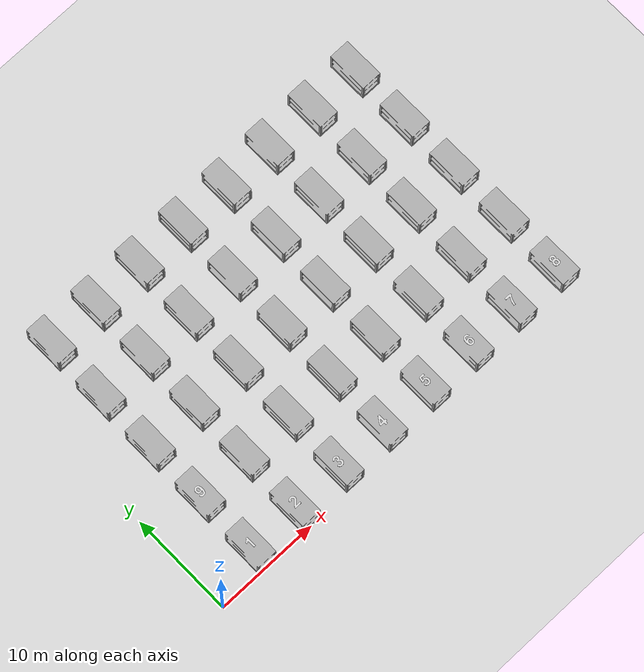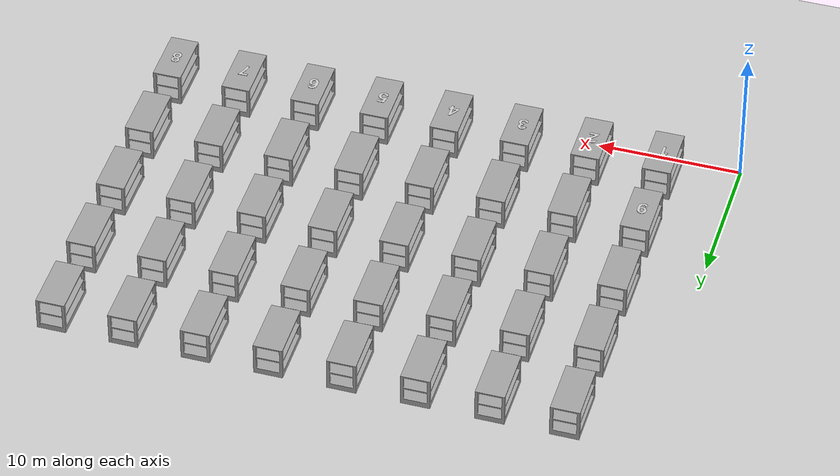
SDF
<?xml version="1.0"?>
<sdf version="1.4">
  <world name="Warehouse">
    <include>
      <uri>model://ground_plane</uri>
    </include>
    <include>
      <uri>model://sun</uri>
    </include>
    <physics type='ode'>
      <max_step_size>0.001</max_step_size>
      <real_time_update_rate>2000</real_time_update_rate>
      <gravity>0 0 -9.8</gravity>
    </physics>

    <model name="rack1">
      <pose>5 4 0  0 0 0</pose>
      <static>true</static>
      <link name="body">
        <visual name="visual">
          <geometry>
            <mesh><uri>file://warehouserack.dae</uri></mesh>
          </geometry>
        </visual>
        <collision name="collision">
          <geometry>
            <mesh><uri>file://warehouserack.dae</uri></mesh>
          </geometry>
        </collision>
      </link>
    </model>

    <model name="rack1_tag">
      <pose>5 2 2.4  0 0 0</pose>
      <static>true</static>
      <link name="body">
        <visual name="visual">
          <geometry>
            <mesh><uri>file://one.dae</uri></mesh>
          </geometry>
        </visual>
        <collision name="collision">
          <geometry>
            <mesh><uri>file://one.dae</uri></mesh>
          </geometry>
        </collision>
      </link>
    </model>

    <model name="rack2">
      <pose>10 4 0  0 0 0</pose>
      <static>true</static>
      <link name="body">
        <visual name="visual">
          <geometry>
            <mesh><uri>file://warehouserack.dae</uri></mesh>
          </geometry>
        </visual>
        <collision name="collision">
          <geometry>
            <mesh><uri>file://warehouserack.dae</uri></mesh>
          </geometry>
        </collision>
      </link>
    </model>

    <model name="rack2_tag">
      <pose>10 2 2.4  0 0 0</pose>
      <static>true</static>
      <link name="body">
        <visual name="visual">
          <geometry>
            <mesh><uri>file://two.dae</uri></mesh>
          </geometry>
        </visual>
        <collision name="collision">
          <geometry>
            <mesh><uri>file://two.dae</uri></mesh>
          </geometry>
        </collision>
      </link>
    </model>

    <model name="rack3">
      <pose>15 4 0  0 0 0</pose>
      <static>true</static>
      <link name="body">
        <visual name="visual">
          <geometry>
            <mesh><uri>file://warehouserack.dae</uri></mesh>
          </geometry>
        </visual>
        <collision name="collision">
          <geometry>
            <mesh><uri>file://warehouserack.dae</uri></mesh>
          </geometry>
        </collision>
      </link>
    </model>

    <model name="rack3_tag">
      <pose>15 2 2.4  0 0 0</pose>
      <static>true</static>
      <link name="body">
        <visual name="visual">
          <geometry>
            <mesh><uri>file://three.dae</uri></mesh>
          </geometry>
        </visual>
        <collision name="collision">
          <geometry>
            <mesh><uri>file://three.dae</uri></mesh>
          </geometry>
        </collision>
      </link>
    </model>

    <model name="rack4">
      <pose>20 4 0  0 0 0</pose>
      <static>true</static>
      <link name="body">
        <visual name="visual">
          <geometry>
            <mesh><uri>file://warehouserack.dae</uri></mesh>
          </geometry>
        </visual>
        <collision name="collision">
          <geometry>
            <mesh><uri>file://warehouserack.dae</uri></mesh>
          </geometry>
        </collision>
      </link>
    </model>

    <model name="rack4_tag">
      <pose>20 2 2.4  0 0 0</pose>
      <static>true</static>
      <link name="body">
        <visual name="visual">
          <geometry>
            <mesh><uri>file://four.dae</uri></mesh>
          </geometry>
        </visual>
        <collision name="collision">
          <geometry>
            <mesh><uri>file://four.dae</uri></mesh>
          </geometry>
        </collision>
      </link>
    </model>

    <model name="rack5">
      <pose>25 4 0  0 0 0</pose>
      <static>true</static>
      <link name="body">
        <visual name="visual">
          <geometry>
            <mesh><uri>file://warehouserack.dae</uri></mesh>
          </geometry>
        </visual>
        <collision name="collision">
          <geometry>
            <mesh><uri>file://warehouserack.dae</uri></mesh>
          </geometry>
        </collision>
      </link>
    </model>

    <model name="rack5_tag">
      <pose>25 2 2.4  0 0 0</pose>
      <static>true</static>
      <link name="body">
        <visual name="visual">
          <geometry>
            <mesh><uri>file://five.dae</uri></mesh>
          </geometry>
        </visual>
        <collision name="collision">
          <geometry>
            <mesh><uri>file://five.dae</uri></mesh>
          </geometry>
        </collision>
      </link>
    </model>

    <model name="rack6">
      <pose>30 4 0  0 0 0</pose>
      <static>true</static>
      <link name="body">
        <visual name="visual">
          <geometry>
            <mesh><uri>file://warehouserack.dae</uri></mesh>
          </geometry>
        </visual>
        <collision name="collision">
          <geometry>
            <mesh><uri>file://warehouserack.dae</uri></mesh>
          </geometry>
        </collision>
      </link>
    </model>

    <model name="rack6_tag">
      <pose>30 2 2.4  0 0 0</pose>
      <static>true</static>
      <link name="body">
        <visual name="visual">
          <geometry>
            <mesh><uri>file://six.dae</uri></mesh>
          </geometry>
        </visual>
        <collision name="collision">
          <geometry>
            <mesh><uri>file://six.dae</uri></mesh>
          </geometry>
        </collision>
      </link>
    </model>

    <model name="rack7">
      <pose>35 4 0  0 0 0</pose>
      <static>true</static>
      <link name="body">
        <visual name="visual">
          <geometry>
            <mesh><uri>file://warehouserack.dae</uri></mesh>
          </geometry>
        </visual>
        <collision name="collision">
          <geometry>
            <mesh><uri>file://warehouserack.dae</uri></mesh>
          </geometry>
        </collision>
      </link>
    </model>

    <model name="rack7_tag">
      <pose>35 2 2.4  0 0 0</pose>
      <static>true</static>
      <link name="body">
        <visual name="visual">
          <geometry>
            <mesh><uri>file://seven.dae</uri></mesh>
          </geometry>
        </visual>
        <collision name="collision">
          <geometry>
            <mesh><uri>file://seven.dae</uri></mesh>
          </geometry>
        </collision>
      </link>
    </model>

    <model name="rack8">
      <pose>40 4 0  0 0 0</pose>
      <static>true</static>
      <link name="body">
        <visual name="visual">
          <geometry>
            <mesh><uri>file://warehouserack.dae</uri></mesh>
          </geometry>
        </visual>
        <collision name="collision">
          <geometry>
            <mesh><uri>file://warehouserack.dae</uri></mesh>
          </geometry>
        </collision>
      </link>
    </model>

    <model name="rack8_tag">
      <pose>40 2 2.4  0 0 0</pose>
      <static>true</static>
      <link name="body">
        <visual name="visual">
          <geometry>
            <mesh><uri>file://eight.dae</uri></mesh>
          </geometry>
        </visual>
        <collision name="collision">
          <geometry>
            <mesh><uri>file://eight.dae</uri></mesh>
          </geometry>
        </collision>
      </link>
    </model>

    <model name="rack9">
      <pose>5 10 0  0 0 0</pose>
      <static>true</static>
      <link name="body">
        <visual name="visual">
          <geometry>
            <mesh><uri>file://warehouserack.dae</uri></mesh>
          </geometry>
        </visual>
        <collision name="collision">
          <geometry>
            <mesh><uri>file://warehouserack.dae</uri></mesh>
          </geometry>
        </collision>
      </link>
    </model>

    <model name="rack9_tag">
      <pose>5 8 2.4  0 0 0</pose>
      <static>true</static>
      <link name="body">
        <visual name="visual">
          <geometry>
            <mesh><uri>file://nine.dae</uri></mesh>
          </geometry>
        </visual>
        <collision name="collision">
          <geometry>
            <mesh><uri>file://nine.dae</uri></mesh>
          </geometry>
        </collision>
      </link>
    </model>

    <model name="rack10">
      <pose>10 10 0  0 0 0</pose>
      <static>true</static>
      <link name="body">
        <visual name="visual">
          <geometry>
            <mesh><uri>file://warehouserack.dae</uri></mesh>
          </geometry>
        </visual>
        <collision name="collision">
          <geometry>
            <mesh><uri>file://warehouserack.dae</uri></mesh>
          </geometry>
        </collision>
      </link>
    </model>

    <model name="rack11">
      <pose>15 10 0  0 0 0</pose>
      <static>true</static>
      <link name="body">
        <visual name="visual">
          <geometry>
            <mesh><uri>file://warehouserack.dae</uri></mesh>
          </geometry>
        </visual>
        <collision name="collision">
          <geometry>
            <mesh><uri>file://warehouserack.dae</uri></mesh>
          </geometry>
        </collision>
      </link>
    </model>

    <model name="rack12">
      <pose>20 10 0  0 0 0</pose>
      <static>true</static>
      <link name="body">
        <visual name="visual">
          <geometry>
            <mesh><uri>file://warehouserack.dae</uri></mesh>
          </geometry>
        </visual>
        <collision name="collision">
          <geometry>
            <mesh><uri>file://warehouserack.dae</uri></mesh>
          </geometry>
        </collision>
      </link>
    </model>

    <model name="rack13">
      <pose>25 10 0  0 0 0</pose>
      <static>true</static>
      <link name="body">
        <visual name="visual">
          <geometry>
            <mesh><uri>file://warehouserack.dae</uri></mesh>
          </geometry>
        </visual>
        <collision name="collision">
          <geometry>
            <mesh><uri>file://warehouserack.dae</uri></mesh>
          </geometry>
        </collision>
      </link>
    </model>

    <model name="rack14">
      <pose>30 10 0  0 0 0</pose>
      <static>true</static>
      <link name="body">
        <visual name="visual">
          <geometry>
            <mesh><uri>file://warehouserack.dae</uri></mesh>
          </geometry>
        </visual>
        <collision name="collision">
          <geometry>
            <mesh><uri>file://warehouserack.dae</uri></mesh>
          </geometry>
        </collision>
      </link>
    </model>

    <model name="rack15">
      <pose>35 10 0  0 0 0</pose>
      <static>true</static>
      <link name="body">
        <visual name="visual">
          <geometry>
            <mesh><uri>file://warehouserack.dae</uri></mesh>
          </geometry>
        </visual>
        <collision name="collision">
          <geometry>
            <mesh><uri>file://warehouserack.dae</uri></mesh>
          </geometry>
        </collision>
      </link>
    </model>

    <model name="rack16">
      <pose>40 10 0  0 0 0</pose>
      <static>true</static>
      <link name="body">
        <visual name="visual">
          <geometry>
            <mesh><uri>file://warehouserack.dae</uri></mesh>
          </geometry>
        </visual>
        <collision name="collision">
          <geometry>
            <mesh><uri>file://warehouserack.dae</uri></mesh>
          </geometry>
        </collision>
      </link>
    </model>

    <model name="rack17">
      <pose>5 16 0  0 0 0</pose>
      <static>true</static>
      <link name="body">
        <visual name="visual">
          <geometry>
            <mesh><uri>file://warehouserack.dae</uri></mesh>
          </geometry>
        </visual>
        <collision name="collision">
          <geometry>
            <mesh><uri>file://warehouserack.dae</uri></mesh>
          </geometry>
        </collision>
      </link>
    </model>

    <model name="rack18">
      <pose>10 16 0  0 0 0</pose>
      <static>true</static>
      <link name="body">
        <visual name="visual">
          <geometry>
            <mesh><uri>file://warehouserack.dae</uri></mesh>
          </geometry>
        </visual>
        <collision name="collision">
          <geometry>
            <mesh><uri>file://warehouserack.dae</uri></mesh>
          </geometry>
        </collision>
      </link>
    </model>

    <model name="rack19">
      <pose>15 16 0  0 0 0</pose>
      <static>true</static>
      <link name="body">
        <visual name="visual">
          <geometry>
            <mesh><uri>file://warehouserack.dae</uri></mesh>
          </geometry>
        </visual>
        <collision name="collision">
          <geometry>
            <mesh><uri>file://warehouserack.dae</uri></mesh>
          </geometry>
        </collision>
      </link>
    </model>

    <model name="rack20">
      <pose>20 16 0  0 0 0</pose>
      <static>true</static>
      <link name="body">
        <visual name="visual">
          <geometry>
            <mesh><uri>file://warehouserack.dae</uri></mesh>
          </geometry>
        </visual>
        <collision name="collision">
          <geometry>
            <mesh><uri>file://warehouserack.dae</uri></mesh>
          </geometry>
        </collision>
      </link>
    </model>

    <model name="rack21">
      <pose>25 16 0  0 0 0</pose>
      <static>true</static>
      <link name="body">
        <visual name="visual">
          <geometry>
            <mesh><uri>file://warehouserack.dae</uri></mesh>
          </geometry>
        </visual>
        <collision name="collision">
          <geometry>
            <mesh><uri>file://warehouserack.dae</uri></mesh>
          </geometry>
        </collision>
      </link>
    </model>

    <model name="rack22">
      <pose>30 16 0  0 0 0</pose>
      <static>true</static>
      <link name="body">
        <visual name="visual">
          <geometry>
            <mesh><uri>file://warehouserack.dae</uri></mesh>
          </geometry>
        </visual>
        <collision name="collision">
          <geometry>
            <mesh><uri>file://warehouserack.dae</uri></mesh>
          </geometry>
        </collision>
      </link>
    </model>

    <model name="rack23">
      <pose>35 16 0  0 0 0</pose>
      <static>true</static>
      <link name="body">
        <visual name="visual">
          <geometry>
            <mesh><uri>file://warehouserack.dae</uri></mesh>
          </geometry>
        </visual>
        <collision name="collision">
          <geometry>
            <mesh><uri>file://warehouserack.dae</uri></mesh>
          </geometry>
        </collision>
      </link>
    </model>

    <model name="rack24">
      <pose>40 16 0  0 0 0</pose>
      <static>true</static>
      <link name="body">
        <visual name="visual">
          <geometry>
            <mesh><uri>file://warehouserack.dae</uri></mesh>
          </geometry>
        </visual>
        <collision name="collision">
          <geometry>
            <mesh><uri>file://warehouserack.dae</uri></mesh>
          </geometry>
        </collision>
      </link>
    </model>

    <model name="rack25">
      <pose>5 22 0  0 0 0</pose>
      <static>true</static>
      <link name="body">
        <visual name="visual">
          <geometry>
            <mesh><uri>file://warehouserack.dae</uri></mesh>
          </geometry>
        </visual>
        <collision name="collision">
          <geometry>
            <mesh><uri>file://warehouserack.dae</uri></mesh>
          </geometry>
        </collision>
      </link>
    </model>

    <model name="rack26">
      <pose>10 22 0  0 0 0</pose>
      <static>true</static>
      <link name="body">
        <visual name="visual">
          <geometry>
            <mesh><uri>file://warehouserack.dae</uri></mesh>
          </geometry>
        </visual>
        <collision name="collision">
          <geometry>
            <mesh><uri>file://warehouserack.dae</uri></mesh>
          </geometry>
        </collision>
      </link>
    </model>

    <model name="rack27">
      <pose>15 22 0  0 0 0</pose>
      <static>true</static>
      <link name="body">
        <visual name="visual">
          <geometry>
            <mesh><uri>file://warehouserack.dae</uri></mesh>
          </geometry>
        </visual>
        <collision name="collision">
          <geometry>
            <mesh><uri>file://warehouserack.dae</uri></mesh>
          </geometry>
        </collision>
      </link>
    </model>

    <model name="rack28">
      <pose>20 22 0  0 0 0</pose>
      <static>true</static>
      <link name="body">
        <visual name="visual">
          <geometry>
            <mesh><uri>file://warehouserack.dae</uri></mesh>
          </geometry>
        </visual>
        <collision name="collision">
          <geometry>
            <mesh><uri>file://warehouserack.dae</uri></mesh>
          </geometry>
        </collision>
      </link>
    </model>

    <model name="rack29">
      <pose>25 22 0  0 0 0</pose>
      <static>true</static>
      <link name="body">
        <visual name="visual">
          <geometry>
            <mesh><uri>file://warehouserack.dae</uri></mesh>
          </geometry>
        </visual>
        <collision name="collision">
          <geometry>
            <mesh><uri>file://warehouserack.dae</uri></mesh>
          </geometry>
        </collision>
      </link>
    </model>

    <model name="rack30">
      <pose>30 22 0  0 0 0</pose>
      <static>true</static>
      <link name="body">
        <visual name="visual">
          <geometry>
            <mesh><uri>file://warehouserack.dae</uri></mesh>
          </geometry>
        </visual>
        <collision name="collision">
          <geometry>
            <mesh><uri>file://warehouserack.dae</uri></mesh>
          </geometry>
        </collision>
      </link>
    </model>

    <model name="rack31">
      <pose>35 22 0  0 0 0</pose>
      <static>true</static>
      <link name="body">
        <visual name="visual">
          <geometry>
            <mesh><uri>file://warehouserack.dae</uri></mesh>
          </geometry>
        </visual>
        <collision name="collision">
          <geometry>
            <mesh><uri>file://warehouserack.dae</uri></mesh>
          </geometry>
        </collision>
      </link>
    </model>

    <model name="rack32">
      <pose>40 22 0  0 0 0</pose>
      <static>true</static>
      <link name="body">
        <visual name="visual">
          <geometry>
            <mesh><uri>file://warehouserack.dae</uri></mesh>
          </geometry>
        </visual>
        <collision name="collision">
          <geometry>
            <mesh><uri>file://warehouserack.dae</uri></mesh>
          </geometry>
        </collision>
      </link>
    </model>

    <model name="rack33">
      <pose>5 28 0  0 0 0</pose>
      <static>true</static>
      <link name="body">
        <visual name="visual">
          <geometry>
            <mesh><uri>file://warehouserack.dae</uri></mesh>
          </geometry>
        </visual>
        <collision name="collision">
          <geometry>
            <mesh><uri>file://warehouserack.dae</uri></mesh>
          </geometry>
        </collision>
      </link>
    </model>

    <model name="rack34">
      <pose>10 28 0  0 0 0</pose>
      <static>true</static>
      <link name="body">
        <visual name="visual">
          <geometry>
            <mesh><uri>file://warehouserack.dae</uri></mesh>
          </geometry>
        </visual>
        <collision name="collision">
          <geometry>
            <mesh><uri>file://warehouserack.dae</uri></mesh>
          </geometry>
        </collision>
      </link>
    </model>

    <model name="rack35">
      <pose>15 28 0  0 0 0</pose>
      <static>true</static>
      <link name="body">
        <visual name="visual">
          <geometry>
            <mesh><uri>file://warehouserack.dae</uri></mesh>
          </geometry>
        </visual>
        <collision name="collision">
          <geometry>
            <mesh><uri>file://warehouserack.dae</uri></mesh>
          </geometry>
        </collision>
      </link>
    </model>

    <model name="rack36">
      <pose>20 28 0  0 0 0</pose>
      <static>true</static>
      <link name="body">
        <visual name="visual">
          <geometry>
            <mesh><uri>file://warehouserack.dae</uri></mesh>
          </geometry>
        </visual>
        <collision name="collision">
          <geometry>
            <mesh><uri>file://warehouserack.dae</uri></mesh>
          </geometry>
        </collision>
      </link>
    </model>

    <model name="rack37">
      <pose>25 28 0  0 0 0</pose>
      <static>true</static>
      <link name="body">
        <visual name="visual">
          <geometry>
            <mesh><uri>file://warehouserack.dae</uri></mesh>
          </geometry>
        </visual>
        <collision name="collision">
          <geometry>
            <mesh><uri>file://warehouserack.dae</uri></mesh>
          </geometry>
        </collision>
      </link>
    </model>

    <model name="rack38">
      <pose>30 28 0  0 0 0</pose>
      <static>true</static>
      <link name="body">
        <visual name="visual">
          <geometry>
            <mesh><uri>file://warehouserack.dae</uri></mesh>
          </geometry>
        </visual>
        <collision name="collision">
          <geometry>
            <mesh><uri>file://warehouserack.dae</uri></mesh>
          </geometry>
        </collision>
      </link>
    </model>

    <model name="rack39">
      <pose>35 28 0  0 0 0</pose>
      <static>true</static>
      <link name="body">
        <visual name="visual">
          <geometry>
            <mesh><uri>file://warehouserack.dae</uri></mesh>
          </geometry>
        </visual>
        <collision name="collision">
          <geometry>
            <mesh><uri>file://warehouserack.dae</uri></mesh>
          </geometry>
        </collision>
      </link>
    </model>

    <model name="rack40">
      <pose>40 28 0  0 0 0</pose>
      <static>true</static>
      <link name="body">
        <visual name="visual">
          <geometry>
            <mesh><uri>file://warehouserack.dae</uri></mesh>
          </geometry>
        </visual>
        <collision name="collision">
          <geometry>
            <mesh><uri>file://warehouserack.dae</uri></mesh>
          </geometry>
        </collision>
      </link>
    </model>

  </world>
</sdf>
